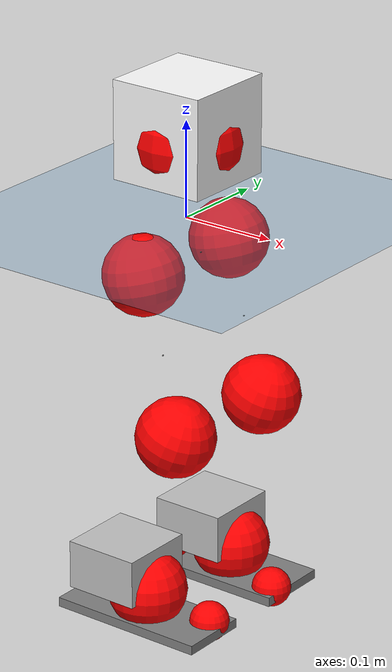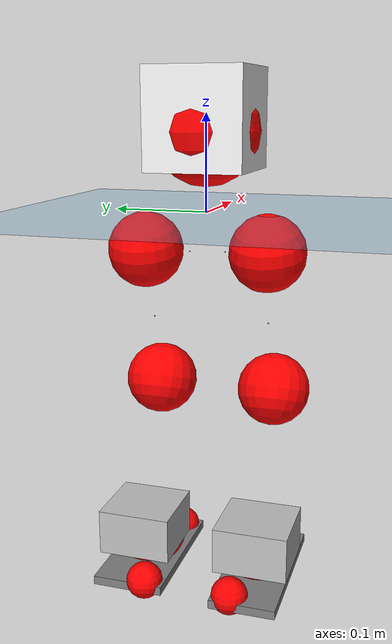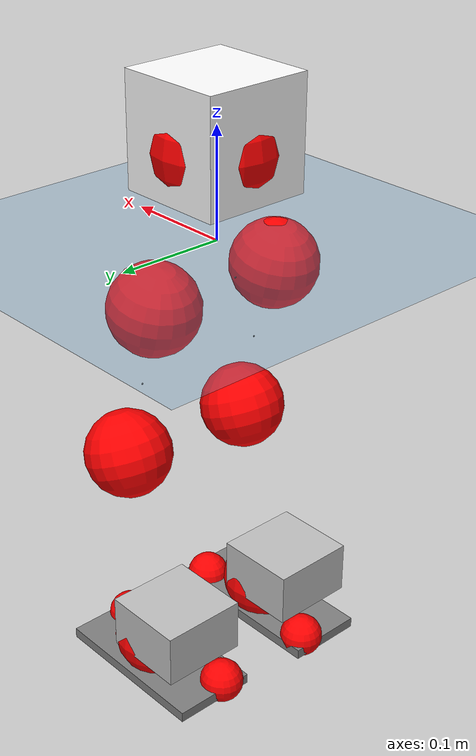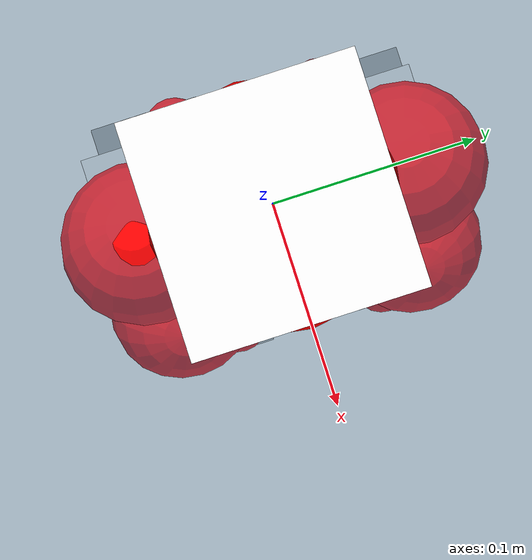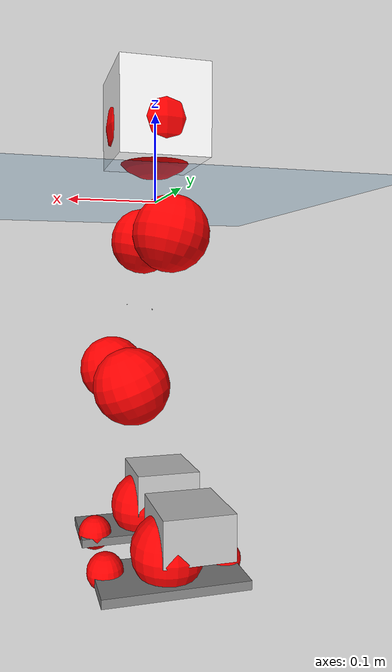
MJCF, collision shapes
<mujoco model="pi_12dof_release_v1">
  <compiler angle="radian" assetdir="assets" balanceinertia="true" inertiafromgeom="false"/>

  <option timestep="0.005" density="1.2" viscosity="2e-05"/>

  <size nkey="1"/>

  <visual>
    <quality shadowsize="8192"/>
    <map shadowclip="0.5"/>
  </visual>

  <default>
    <default class="/">
      <joint armature="0.01" damping="0.01" frictionloss="0.01"/>
      <geom contype="0" conaffinity="0" group="1" solref="-1000 -80"/>
      <site size="0.01 0.005 0.005" group="5"/>
      <general forcelimited="true" biastype="affine" gainprm="20" biasprm="0 -20 -0.5"/>
      <default class="foot">
        <geom size="0.0845 0.036 0.005" type="box" condim="6" group="4" priority="1" friction="0.9 0.2 0.2" solimp="0.015 1 0.005"/>
      </default>
      <default class="reward_collision_sphere">
        <geom group="5" rgba="1 0 0 1"/>
      </default>
    </default>
  </default>

  <asset>
    <texture type="skybox" colorspace="auto" name="//unnamed_texture_0" builtin="gradient" rgb1="0.95 0.95 0.95" rgb2="0.95 0.95 0.95" width="100" height="600"/>
    <texture type="2d" colorspace="auto" name="texplane" builtin="checker" rgb1="0.345 0.575 0.748" rgb2="0.345 0.575 0.748" markrgb="1 1 1" width="512" height="512"/>
    <material name="MatPlane" class="/" texture="texplane" texuniform="true" texrepeat="2 2" specular="0.9"/>
    <mesh name="baselink_1" class="/" file="baselink_1.STL"/>
    <mesh name="r_hip_pitch_link" class="/" file="r_hip_pitch_link.STL"/>
    <mesh name="r_hip_roll_link" class="/" file="r_hip_roll_link.STL"/>
    <mesh name="r_thigh_link" class="/" file="r_thigh_link.STL"/>
    <mesh name="r_calf_link" class="/" file="r_calf_link.STL"/>
    <mesh name="r_ankle_pitch_link" class="/" file="r_ankle_pitch_link.STL"/>
    <mesh name="r_ankle_roll_link" class="/" file="r_ankle_roll_link.STL"/>
    <mesh name="l_hip_pitch_link" class="/" file="l_hip_pitch_link.STL"/>
    <mesh name="l_hip_roll_link" class="/" file="l_hip_roll_link.STL"/>
    <mesh name="l_thigh_link" class="/" file="l_thigh_link.STL"/>
    <mesh name="l_calf_link" class="/" file="l_calf_link.STL"/>
    <mesh name="l_ankle_pitch_link" class="/" file="l_ankle_pitch_link.STL"/>
    <mesh name="l_ankle_roll_link" class="/" file="l_ankle_roll_link.STL"/>
  </asset>

  <worldbody>
    <geom name="floor" class="/" size="100 100 0.125" type="plane" group="0" material="MatPlane"/>
    <light name="toplight_shadow" class="/" pos="0 0 5" dir="0.0990148 0.0990148 -0.990148" type="directional" ambient="0.04 0.04 0.04" diffuse="0.55 0.55 0.55" specular="0.12 0.12 0.12"/>
    <light name="toplight_fill" class="/" pos="0 0 5" dir="0.0990148 0.0990148 -0.990148" type="directional" castshadow="false" ambient="0.04 0.04 0.04" diffuse="0.3 0.3 0.3" specular="0.08 0.08 0.08"/>
    <body name="trunk" pos="0.00105083 0.000173489 -0.000886172" quat="1 -0.000169981 2.75863e-05 -1.37699e-05">
      <inertial pos="-0.000339372 -0.00286808 0.0484761" quat="0.694095 0.0140522 0.0102066 0.719674" mass="2.37206" diaginertia="0.0100722 0.00439472 0.00973014"/>
      <joint name="//unnamed_joint_0" type="free"/>
      <geom name="//unnamed_geom_1" class="/" type="mesh" density="0" rgba="1 1 1 1" mesh="baselink_1"/>
      <geom name="//unnamed_geom_2" class="/" size="0.0509322 0.0509322 0.0509322" pos="0 0 0.0948758" type="box" rgba="1 1 1 1"/>
      <geom name="//unnamed_geom_3" class="reward_collision_sphere" size="0.0560254" pos="0 0 0.0830163"/>
      <site name="imu" class="/" pos="0.0126763 -0.000141881 -0.0126365" size="0.0101864"/>
      <camera name="track" class="/" pos="0 -1.73009 0" quat="0.707107 0.707107 0 0" mode="trackcom"/>
      <camera name="ego_camera" class="/" pos="0.0753706 0 0.21347" quat="-0.5 -0.5 0.5 0.5"/>
      <body name="r_hip_pitch_link" pos="-0.00164195 -0.0211646 -0.0393062" quat="0.992194 1.64794e-05 -0.124701 2.944e-05">
        <inertial pos="0.00111704 -0.0505165 -0.000110932" quat="-0.0190748 0.705959 -0.0284191 0.707425" mass="0.378668" diaginertia="0.000107341 4.47835e-05 0.000188982"/>
        <joint name="r_hip_pitch_joint" class="/" pos="0 0 0" axis="-0.0050374 -0.999986 -0.00140781" stiffness="0.00599439" range="-1.74433 1.19748" armature="0.00901544" damping="0.0128684" frictionloss="0.0104451"/>
        <geom name="//unnamed_geom_4" class="/" type="mesh" density="0" rgba="0.75294 0.75294 0.75294 1" mesh="r_hip_pitch_link"/>
        <geom name="//unnamed_geom_5" class="/" size="0.000509322 0.000509322 0.000509322" type="box" rgba="0.75294 0.75294 0.75294 1"/>
        <body name="r_hip_roll_link" pos="-0.000598078 -0.0458129 0.000790283" quat="0.999999 -0.000922032 0.00016391 0.000763527">
          <inertial pos="-0.00123942 -4.61412e-05 -0.0728181" quat="0.709422 -0.0743637 -0.088362 0.695257" mass="0.401701" diaginertia="0.000340753 0.00012964 0.000295979"/>
          <joint name="r_hip_roll_joint" class="/" pos="0 0 0" axis="-0.999975 0.00667969 0.00217927" range="-0.122156 0.498307" armature="0.00970677" damping="0" frictionloss="0.0115057"/>
          <geom name="//unnamed_geom_6" class="/" type="mesh" density="0" rgba="0.75294 0.75294 0.75294 1" mesh="r_hip_roll_link"/>
          <geom name="//unnamed_geom_7" class="/" size="0.000509322 0.000509322 0.000509322" type="box" rgba="0.75294 0.75294 0.75294 1"/>
          <geom name="//unnamed_geom_8" class="reward_collision_sphere" size="0.0407458"/>
          <body name="r_thigh_link" pos="0.00131756 0.00283554 -0.0828958" quat="1 0.000307738 -0.000405278 0.000299818">
            <inertial pos="0.000522506 -0.000821647 -0.0563033" quat="0.737264 0.675604 5.32602e-05 0.000164136" mass="0.119609" diaginertia="0.000125679 4.63756e-05 0.000135452"/>
            <joint name="r_thigh_joint" class="/" pos="0 0 0" axis="0.00190321 0.000465027 -0.999998" range="-0.330889 0.621188" armature="0.0116158" damping="0.0046016" frictionloss="0.0101989"/>
            <geom name="//unnamed_geom_9" class="/" type="mesh" density="0" rgba="0.75294 0.75294 0.75294 1" mesh="r_thigh_link"/>
            <geom name="//unnamed_geom_10" class="/" size="0.000509322 0.000509322 0.000509322" type="box" rgba="0.75294 0.75294 0.75294 1"/>
            <body name="r_calf_link" pos="-0.00217583 -0.00357978 -0.0832662" quat="0.947647 1.25692e-05 0.319321 7.28789e-06">
              <inertial pos="-0.00151003 -0.00366441 -0.0839534" quat="0.999951 0.00243978 -0.00914488 -0.00284973" mass="0.849232" diaginertia="0.00349906 0.00173667 0.000398245"/>
              <joint name="r_calf_joint" class="/" pos="0 0 0" axis="0.000889878 -0.99999 0.0043938" range="-1.64872 0.636673" armature="0.0102469" damping="0.0151811" frictionloss="0.0104224"/>
              <geom name="//unnamed_geom_11" class="/" type="mesh" density="0" rgba="0.75294 0.75294 0.75294 1" mesh="r_calf_link"/>
              <geom name="//unnamed_geom_12" class="/" size="0.000509322 0.000509322 0.000509322" type="box" rgba="0.75294 0.75294 0.75294 1"/>
              <geom name="//unnamed_geom_13" class="reward_collision_sphere" size="0.0407458"/>
              <body name="r_ankle_pitch_link" pos="0.0013782 0.000908106 -0.168028" quat="0.980276 -8.48715e-05 -0.197633 -0.000390462">
                <inertial pos="0.00737997 0.00399628 -0.000730233" quat="0.000869023 0.708409 -0.000191191 0.705801" mass="0.192044" diaginertia="0.00031471 0.00010557 0.000292703"/>
                <joint name="r_ankle_pitch_joint" class="/" pos="0 0 0" axis="-0.000441349 -0.999991 -0.00419352" range="-1.25117 0.523428" armature="0.010554" damping="0" frictionloss="0.0100442"/>
                <geom name="//unnamed_geom_14" class="/" type="mesh" density="0" rgba="0.75294 0.75294 0.75294 1" mesh="r_ankle_pitch_link"/>
                <geom name="//unnamed_geom_15" class="/" size="0.0397271 0.0407458 0.0254661" type="box" rgba="0.75294 0.75294 0.75294 1"/>
                <body name="r_ankle_roll_link" pos="0.0756746 0.00268775 -0.000178489" quat="1 -3.53484e-05 -0.000235624 -6.09486e-05">
                  <inertial pos="-0.0258863 -7.3695e-05 -0.0167336" quat="0.564926 0.437827 0.424999 0.555466" mass="0.564973" diaginertia="0.00117843 0.000512943 0.000678105"/>
                  <joint name="r_ankle_roll_joint" class="/" pos="0 0 0" axis="-0.999996 0.00150631 -0.00258784" range="-0.129884 0.153191" armature="0.0115075" damping="0.00879528" frictionloss="0.00964781"/>
                  <geom name="//unnamed_geom_16" class="/" type="mesh" density="0" rgba="0.75294 0.75294 0.75294 1" mesh="r_ankle_roll_link"/>
                  <geom name="//unnamed_geom_17" class="/" type="mesh" rgba="0.75294 0.75294 0.75294 1" mesh="r_ankle_roll_link"/>
                  <geom name="right_foot" class="foot" size="0.085088 0.0366883 0.00491303" pos="-0.051252 0 -0.0521817"/>
                  <geom name="//unnamed_geom_19" class="reward_collision_sphere" size="0.0407458" pos="-0.0502471 0 -0.0237189"/>
                  <geom name="//unnamed_geom_20" class="reward_collision_sphere" size="0.0203729" pos="0.0150741 0.0173009 -0.0474379"/>
                  <geom name="//unnamed_geom_21" class="reward_collision_sphere" size="0.0203729" pos="-0.120593 0.0173009 -0.0474379"/>
                  <site name="right_foot" class="foot" pos="-0.051252 0 -0.0521817" size="0.0101864"/>
                </body>
              </body>
            </body>
          </body>
        </body>
      </body>
      <body name="l_hip_pitch_link" pos="0.00193032 0.0190545 -0.0412284" quat="0.9922 -1.98444e-05 -0.124655 1.58785e-05">
        <inertial pos="0.000859576 0.0475056 -0.00284863" quat="-0.0327104 0.703089 0.0230257 0.709976" mass="0.42469" diaginertia="0.000140236 5.31742e-05 0.00024313"/>
        <joint name="l_hip_pitch_joint" class="/" pos="0 0 0" axis="-0.000451246 1 -1.00766e-05" range="-1.26431 1.74788" armature="0.0104279" damping="0.0143299" frictionloss="0.00960709"/>
        <geom name="//unnamed_geom_22" class="/" type="mesh" density="0" rgba="0.75294 0.75294 0.75294 1" mesh="l_hip_pitch_link"/>
        <geom name="//unnamed_geom_23" class="/" size="0.000509322 0.000509322 0.000509322" type="box" rgba="0.75294 0.75294 0.75294 1"/>
        <body name="l_hip_roll_link" pos="-0.00201341 0.0489975 0.000510454" quat="1 0.000243046 0.000290415 -0.000175005">
          <inertial pos="-0.00434988 -0.000964016 -0.0748628" quat="0.699824 -0.0764447 -0.0781335 0.705902" mass="0.406639" diaginertia="0.000324602 0.000134394 0.000293433"/>
          <joint name="l_hip_roll_joint" class="/" pos="0 0 0" axis="-0.99999 0.00099865 0.00431219" range="-0.518242 0.139257" armature="0.0107431" damping="0.0145675" frictionloss="0.00995543"/>
          <geom name="//unnamed_geom_24" class="/" type="mesh" density="0" rgba="0.75294 0.75294 0.75294 1" mesh="l_hip_roll_link"/>
          <geom name="//unnamed_geom_25" class="/" size="0.000509322 0.000509322 0.000509322" type="box" rgba="0.75294 0.75294 0.75294 1"/>
          <geom name="//unnamed_geom_26" class="reward_collision_sphere" size="0.0407458"/>
          <body name="l_thigh_link" pos="-8.1048e-05 -0.00106207 -0.0815782" quat="1 -0.000398663 7.86757e-05 4.40175e-05">
            <inertial pos="0.000331392 0.000709594 -0.0554065" quat="0.674426 0.738331 0.000726608 -0.00405925" mass="0.122956" diaginertia="0.000130328 4.87047e-05 0.000138537"/>
            <joint name="l_thigh_joint" class="/" pos="0 0 0" axis="-0.000658388 0.000456315 -1" range="-0.652393 0.281906" armature="0.00971435" damping="0.00595795" frictionloss="0.0100941"/>
            <geom name="//unnamed_geom_27" class="/" type="mesh" density="0" rgba="0.75294 0.75294 0.75294 1" mesh="l_thigh_link"/>
            <geom name="//unnamed_geom_28" class="/" size="0.000509322 0.000509322 0.000509322" type="box" rgba="0.75294 0.75294 0.75294 1"/>
            <body name="l_calf_link" pos="0.00190631 0.000457915 -0.0833451" quat="0.947639 7.61873e-05 0.319343 -6.42598e-05">
              <inertial pos="-0.000173634 0.00260248 -0.0855217" quat="0.999934 0.00887219 0.00329468 -0.00648007" mass="0.853349" diaginertia="0.00349952 0.00163508 0.000395173"/>
              <joint name="l_calf_joint" class="/" pos="0 0 0" axis="-0.0046365 0.999953 -0.00855874" range="-0.643948 1.63568" armature="0.0101671" damping="0" frictionloss="0.00978389"/>
              <geom name="//unnamed_geom_29" class="/" type="mesh" density="0" rgba="0.75294 0.75294 0.75294 1" mesh="l_calf_link"/>
              <geom name="//unnamed_geom_30" class="/" size="0.000509322 0.000509322 0.000509322" type="box" rgba="0.75294 0.75294 0.75294 1"/>
              <geom name="//unnamed_geom_31" class="reward_collision_sphere" size="0.0407458"/>
              <body name="l_ankle_pitch_link" pos="0.00272989 -7.51967e-05 -0.168769" quat="0.980011 0.000689618 -0.198939 -0.000745562">
                <inertial pos="0.00519305 -0.000417141 -0.00080491" quat="-0.00315412 0.707393 0.0023581 0.706809" mass="0.180077" diaginertia="0.000305209 0.000105697 0.000278412"/>
                <joint name="l_ankle_pitch_joint" class="/" pos="0 0 0" axis="0.00116139 0.999999 0.000191324" stiffness="0.000152645" range="-0.512072 1.28398" armature="0.00970449" damping="0.00910331" frictionloss="0.00992186"/>
                <geom name="//unnamed_geom_32" class="/" type="mesh" density="0" rgba="0.75294 0.75294 0.75294 1" mesh="l_ankle_pitch_link"/>
                <geom name="//unnamed_geom_33" class="/" size="0.0397271 0.0407458 0.0254661" type="box" rgba="0.75294 0.75294 0.75294 1"/>
                <body name="l_ankle_roll_link" pos="0.0744744 0.00206712 0.000379437" quat="0.999999 0.000660845 -0.000950392 0.000378926">
                  <inertial pos="-0.0227915 -0.000598416 -0.0179925" quat="0.565378 0.424449 0.431492 0.560361" mass="0.559407" diaginertia="0.00115915 0.000500107 0.000666759"/>
                  <joint name="l_ankle_roll_joint" class="/" pos="0 0 0" axis="-1 -0.000126449 -0.000151681" range="-0.108812 0.128156" armature="0.0112647" damping="0.0220757" frictionloss="0.0100226"/>
                  <geom name="//unnamed_geom_34" class="/" type="mesh" density="0" rgba="0.75294 0.75294 0.75294 1" mesh="l_ankle_roll_link"/>
                  <geom name="//unnamed_geom_35" class="/" type="mesh" rgba="0.75294 0.75294 0.75294 1" mesh="l_ankle_roll_link"/>
                  <geom name="left_foot" class="foot" size="0.0799361 0.0399417 0.00491079" pos="-0.051252 0 -0.0521817"/>
                  <geom name="//unnamed_geom_37" class="reward_collision_sphere" size="0.0407458" pos="-0.0502471 0 -0.0237189"/>
                  <geom name="//unnamed_geom_38" class="reward_collision_sphere" size="0.0203729" pos="0.0150741 -0.0173009 -0.0474379"/>
                  <geom name="//unnamed_geom_39" class="reward_collision_sphere" size="0.0203729" pos="-0.120593 -0.0173009 -0.0474379"/>
                  <site name="left_foot" class="foot" pos="-0.051252 0 -0.0521817" size="0.0101864"/>
                </body>
              </body>
            </body>
          </body>
        </body>
      </body>
    </body>
  </worldbody>

  <contact>
    <pair class="/" geom1="floor" geom2="right_foot" name="//unnamed_contact_1"/>
    <pair class="/" geom1="floor" geom2="left_foot" name="//unnamed_contact_0"/>
  </contact>

  <actuator>
    <general name="r_hip_pitch_joint" class="/" joint="r_hip_pitch_joint" forcerange="-22.9825 22.9825" gainprm="19.1058" biasprm="0 -19.1058 -0.520105"/>
    <general name="r_hip_roll_joint" class="/" joint="r_hip_roll_joint" forcerange="-21.5474 21.5474" gainprm="19.1058" biasprm="0 -19.1058 -0.520105"/>
    <general name="r_thigh_joint" class="/" joint="r_thigh_joint" forcerange="-21.8272 21.8272" gainprm="19.1058" biasprm="0 -19.1058 -0.520105"/>
    <general name="r_calf_joint" class="/" joint="r_calf_joint" forcerange="-23.366 23.366" gainprm="19.1058" biasprm="0 -19.1058 -0.520105"/>
    <general name="r_ankle_pitch_joint" class="/" joint="r_ankle_pitch_joint" forcerange="-20.982 20.982" gainprm="19.1058" biasprm="0 -19.1058 -0.520105"/>
    <general name="r_ankle_roll_joint" class="/" joint="r_ankle_roll_joint" forcerange="-21.3011 21.3011" gainprm="19.1058" biasprm="0 -19.1058 -0.520105"/>
    <general name="l_hip_pitch_joint" class="/" joint="l_hip_pitch_joint" forcerange="-20.0021 20.0021" gainprm="19.1058" biasprm="0 -19.1058 -0.520105"/>
    <general name="l_hip_roll_joint" class="/" joint="l_hip_roll_joint" forcerange="-19.3284 19.3284" gainprm="19.1058" biasprm="0 -19.1058 -0.520105"/>
    <general name="l_thigh_joint" class="/" joint="l_thigh_joint" forcerange="-22.1507 22.1507" gainprm="19.1058" biasprm="0 -19.1058 -0.520105"/>
    <general name="l_calf_joint" class="/" joint="l_calf_joint" forcerange="-21.5087 21.5087" gainprm="19.1058" biasprm="0 -19.1058 -0.520105"/>
    <general name="l_ankle_pitch_joint" class="/" joint="l_ankle_pitch_joint" forcerange="-22.472 22.472" gainprm="19.1058" biasprm="0 -19.1058 -0.520105"/>
    <general name="l_ankle_roll_joint" class="/" joint="l_ankle_roll_joint" forcerange="-22.1204 22.1204" gainprm="19.1058" biasprm="0 -19.1058 -0.520105"/>
  </actuator>

  <sensor>
    <gyro site="imu" name="imu_angular_velocity"/>
    <velocimeter site="imu" name="imu_linear_velocity"/>
    <framelinvel objtype="site" objname="left_foot" name="left_foot_global_linear_velocity"/>
    <framelinvel objtype="site" objname="right_foot" name="right_foot_global_linear_velocity"/>
  </sensor>

  <keyframe>
    <key name="home" qpos="0 0 0.291 1 0 0 0 0.4 0 0 -0.8 0.4 0 -0.4 0 0 0.8 -0.4 0"/>
  </keyframe>
</mujoco>
